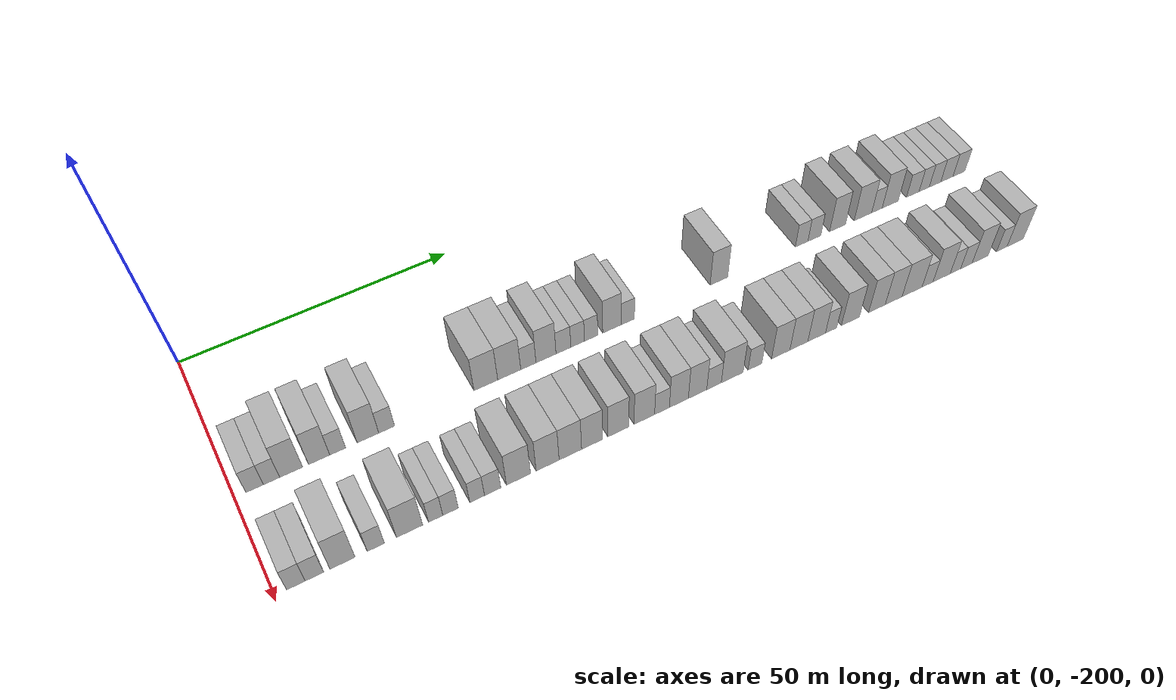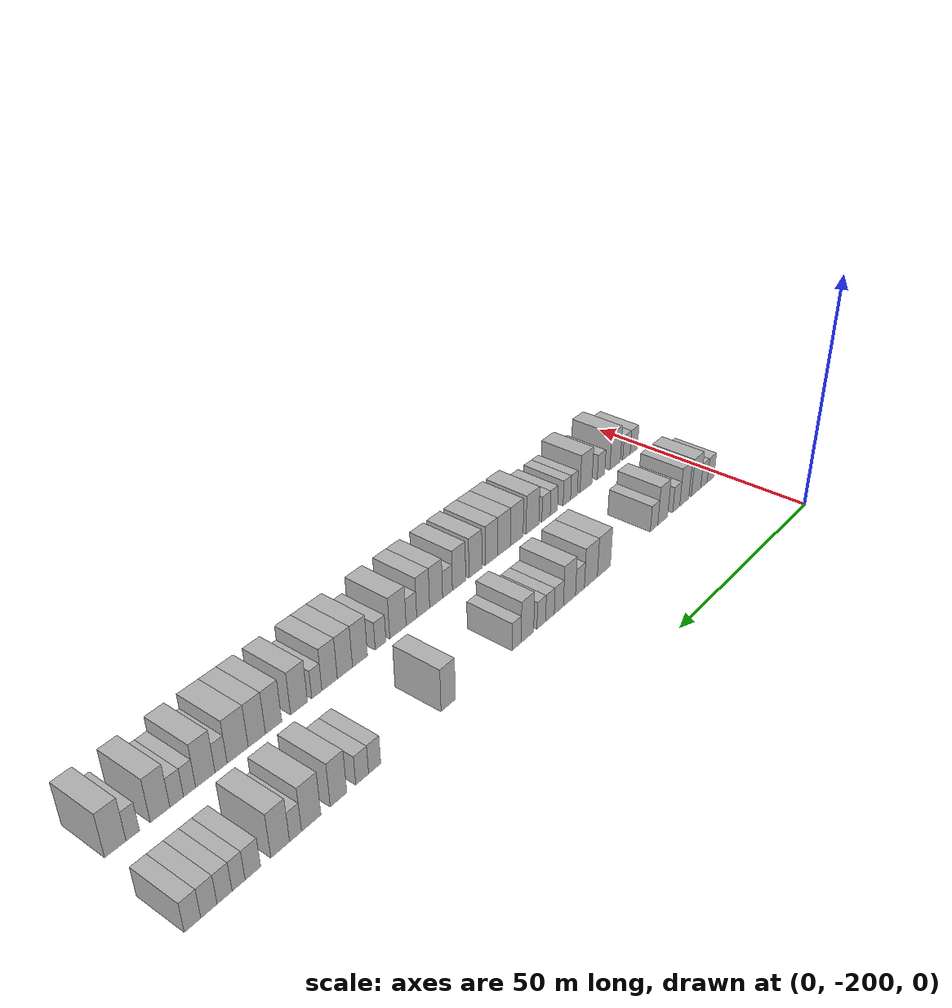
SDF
<sdf version="1.6">
 <world name="default">
  <model name="building_1">
   <static>1</static>
   <pose>25.0000 -196.5424 0 0.000000 0.000000 0.000000</pose>
   <link name="link">
    <pose>0 0 3.00 0 0 0</pose>
    <collision name="collision"><geometry><box><size>10.0000 2.9151 6.0000</size></box></geometry></collision>
    <visual name="visual">
     <cast_shadows>0</cast_shadows>
     <geometry><box><size>10.0000 2.9151 6.0000</size></box></geometry>
     <material>
      <script>
       <uri>model://HANNAS_wall/materials/scripts</uri>
       <uri>model://HANNAS_wall/materials/textures</uri>
       <name>vrc/HANNAS_wall</name>
      </script>
     </material>
    </visual>
   </link>
  </model>
  <model name="building_2">
   <static>1</static>
   <pose>25.0000 -193.7213 0 0.000000 0.000000 0.000000</pose>
   <link name="link">
    <pose>0 0 3.00 0 0 0</pose>
    <collision name="collision"><geometry><box><size>10.0000 2.7271 6.0000</size></box></geometry></collision>
    <visual name="visual">
     <cast_shadows>0</cast_shadows>
     <geometry><box><size>10.0000 2.7271 6.0000</size></box></geometry>
     <material>
      <script>
       <uri>model://HANNAS_wall/materials/scripts</uri>
       <uri>model://HANNAS_wall/materials/textures</uri>
       <name>vrc/HANNAS_wall</name>
      </script>
     </material>
    </visual>
   </link>
  </model>
  <model name="building_3">
   <static>1</static>
   <pose>25.0000 -190.4169 0 0.000000 0.000000 0.000000</pose>
   <link name="link">
    <pose>0 0 4.50 0 0 0</pose>
    <collision name="collision"><geometry><box><size>10.0000 3.8818 9.0000</size></box></geometry></collision>
    <visual name="visual">
     <cast_shadows>0</cast_shadows>
     <geometry><box><size>10.0000 3.8818 9.0000</size></box></geometry>
     <material>
      <script>
       <uri>model://HANNAS_wall/materials/scripts</uri>
       <uri>model://HANNAS_wall/materials/textures</uri>
       <name>vrc/HANNAS_wall</name>
      </script>
     </material>
    </visual>
   </link>
  </model>
  <model name="building_4">
   <static>1</static>
   <pose>25.0000 -185.6511 0 0.000000 0.000000 0.000000</pose>
   <link name="link">
    <pose>0 0 4.50 0 0 0</pose>
    <collision name="collision"><geometry><box><size>10.0000 3.6497 9.0000</size></box></geometry></collision>
    <visual name="visual">
     <cast_shadows>0</cast_shadows>
     <geometry><box><size>10.0000 3.6497 9.0000</size></box></geometry>
     <material>
      <script>
       <uri>model://HANNAS_wall/materials/scripts</uri>
       <uri>model://HANNAS_wall/materials/textures</uri>
       <name>vrc/HANNAS_wall</name>
      </script>
     </material>
    </visual>
   </link>
  </model>
  <model name="building_5">
   <static>1</static>
   <pose>25.0000 -182.4479 0 0.000000 0.000000 0.000000</pose>
   <link name="link">
    <pose>0 0 3.00 0 0 0</pose>
    <collision name="collision"><geometry><box><size>10.0000 2.7566 6.0000</size></box></geometry></collision>
    <visual name="visual">
     <cast_shadows>0</cast_shadows>
     <geometry><box><size>10.0000 2.7566 6.0000</size></box></geometry>
     <material>
      <script>
       <uri>model://HANNAS_wall/materials/scripts</uri>
       <uri>model://HANNAS_wall/materials/textures</uri>
       <name>vrc/HANNAS_wall</name>
      </script>
     </material>
    </visual>
   </link>
  </model>
  <model name="building_6">
   <static>1</static>
   <pose>25.0000 -177.1667 0 0.000000 0.000000 0.000000</pose>
   <link name="link">
    <pose>0 0 4.50 0 0 0</pose>
    <collision name="collision"><geometry><box><size>10.0000 3.8058 9.0000</size></box></geometry></collision>
    <visual name="visual">
     <cast_shadows>0</cast_shadows>
     <geometry><box><size>10.0000 3.8058 9.0000</size></box></geometry>
     <material>
      <script>
       <uri>model://HANNAS_wall/materials/scripts</uri>
       <uri>model://HANNAS_wall/materials/textures</uri>
       <name>vrc/HANNAS_wall</name>
      </script>
     </material>
    </visual>
   </link>
  </model>
  <model name="building_7">
   <static>1</static>
   <pose>25.0000 -173.8585 0 0.000000 0.000000 0.000000</pose>
   <link name="link">
    <pose>0 0 3.00 0 0 0</pose>
    <collision name="collision"><geometry><box><size>10.0000 2.8106 6.0000</size></box></geometry></collision>
    <visual name="visual">
     <cast_shadows>0</cast_shadows>
     <geometry><box><size>10.0000 2.8106 6.0000</size></box></geometry>
     <material>
      <script>
       <uri>model://HANNAS_wall/materials/scripts</uri>
       <uri>model://HANNAS_wall/materials/textures</uri>
       <name>vrc/HANNAS_wall</name>
      </script>
     </material>
    </visual>
   </link>
  </model>
  <model name="building_8">
   <static>1</static>
   <pose>25.0000 -155.7688 0 0.000000 0.000000 0.000000</pose>
   <link name="link">
    <pose>0 0 4.50 0 0 0</pose>
    <collision name="collision"><geometry><box><size>10.0000 4.4563 9.0000</size></box></geometry></collision>
    <visual name="visual">
     <cast_shadows>0</cast_shadows>
     <geometry><box><size>10.0000 4.4563 9.0000</size></box></geometry>
     <material>
      <script>
       <uri>model://HANNAS_wall/materials/scripts</uri>
       <uri>model://HANNAS_wall/materials/textures</uri>
       <name>vrc/HANNAS_wall</name>
      </script>
     </material>
    </visual>
   </link>
  </model>
  <model name="building_9">
   <static>1</static>
   <pose>25.0000 -151.3571 0 0.000000 0.000000 0.000000</pose>
   <link name="link">
    <pose>0 0 4.50 0 0 0</pose>
    <collision name="collision"><geometry><box><size>10.0000 4.3670 9.0000</size></box></geometry></collision>
    <visual name="visual">
     <cast_shadows>0</cast_shadows>
     <geometry><box><size>10.0000 4.3670 9.0000</size></box></geometry>
     <material>
      <script>
       <uri>model://HANNAS_wall/materials/scripts</uri>
       <uri>model://HANNAS_wall/materials/textures</uri>
       <name>vrc/HANNAS_wall</name>
      </script>
     </material>
    </visual>
   </link>
  </model>
  <model name="building_10">
   <static>1</static>
   <pose>25.0000 -147.7145 0 0.000000 0.000000 0.000000</pose>
   <link name="link">
    <pose>0 0 3.00 0 0 0</pose>
    <collision name="collision"><geometry><box><size>10.0000 2.9183 6.0000</size></box></geometry></collision>
    <visual name="visual">
     <cast_shadows>0</cast_shadows>
     <geometry><box><size>10.0000 2.9183 6.0000</size></box></geometry>
     <material>
      <script>
       <uri>model://HANNAS_wall/materials/scripts</uri>
       <uri>model://HANNAS_wall/materials/textures</uri>
       <name>vrc/HANNAS_wall</name>
      </script>
     </material>
    </visual>
   </link>
  </model>
  <model name="building_11">
   <static>1</static>
   <pose>25.0000 -144.3150 0 0.000000 0.000000 0.000000</pose>
   <link name="link">
    <pose>0 0 4.50 0 0 0</pose>
    <collision name="collision"><geometry><box><size>10.0000 3.8806 9.0000</size></box></geometry></collision>
    <visual name="visual">
     <cast_shadows>0</cast_shadows>
     <geometry><box><size>10.0000 3.8806 9.0000</size></box></geometry>
     <material>
      <script>
       <uri>model://HANNAS_wall/materials/scripts</uri>
       <uri>model://HANNAS_wall/materials/textures</uri>
       <name>vrc/HANNAS_wall</name>
      </script>
     </material>
    </visual>
   </link>
  </model>
  <model name="building_12">
   <static>1</static>
   <pose>25.0000 -140.9301 0 0.000000 0.000000 0.000000</pose>
   <link name="link">
    <pose>0 0 3.00 0 0 0</pose>
    <collision name="collision"><geometry><box><size>10.0000 2.8893 6.0000</size></box></geometry></collision>
    <visual name="visual">
     <cast_shadows>0</cast_shadows>
     <geometry><box><size>10.0000 2.8893 6.0000</size></box></geometry>
     <material>
      <script>
       <uri>model://HANNAS_wall/materials/scripts</uri>
       <uri>model://HANNAS_wall/materials/textures</uri>
       <name>vrc/HANNAS_wall</name>
      </script>
     </material>
    </visual>
   </link>
  </model>
  <model name="building_13">
   <static>1</static>
   <pose>25.0000 -138.1441 0 0.000000 0.000000 0.000000</pose>
   <link name="link">
    <pose>0 0 3.00 0 0 0</pose>
    <collision name="collision"><geometry><box><size>10.0000 2.6826 6.0000</size></box></geometry></collision>
    <visual name="visual">
     <cast_shadows>0</cast_shadows>
     <geometry><box><size>10.0000 2.6826 6.0000</size></box></geometry>
     <material>
      <script>
       <uri>model://HANNAS_wall/materials/scripts</uri>
       <uri>model://HANNAS_wall/materials/textures</uri>
       <name>vrc/HANNAS_wall</name>
      </script>
     </material>
    </visual>
   </link>
  </model>
  <model name="building_14">
   <static>1</static>
   <pose>25.0000 -135.4842 0 0.000000 0.000000 0.000000</pose>
   <link name="link">
    <pose>0 0 3.00 0 0 0</pose>
    <collision name="collision"><geometry><box><size>10.0000 2.6374 6.0000</size></box></geometry></collision>
    <visual name="visual">
     <cast_shadows>0</cast_shadows>
     <geometry><box><size>10.0000 2.6374 6.0000</size></box></geometry>
     <material>
      <script>
       <uri>model://HANNAS_wall/materials/scripts</uri>
       <uri>model://HANNAS_wall/materials/textures</uri>
       <name>vrc/HANNAS_wall</name>
      </script>
     </material>
    </visual>
   </link>
  </model>
  <model name="building_15">
   <static>1</static>
   <pose>25.0000 -131.2975 0 0.000000 0.000000 0.000000</pose>
   <link name="link">
    <pose>0 0 4.50 0 0 0</pose>
    <collision name="collision"><geometry><box><size>10.0000 3.7358 9.0000</size></box></geometry></collision>
    <visual name="visual">
     <cast_shadows>0</cast_shadows>
     <geometry><box><size>10.0000 3.7358 9.0000</size></box></geometry>
     <material>
      <script>
       <uri>model://HANNAS_wall/materials/scripts</uri>
       <uri>model://HANNAS_wall/materials/textures</uri>
       <name>vrc/HANNAS_wall</name>
      </script>
     </material>
    </visual>
   </link>
  </model>
  <model name="building_16">
   <static>1</static>
   <pose>25.0000 -128.1174 0 0.000000 0.000000 0.000000</pose>
   <link name="link">
    <pose>0 0 3.00 0 0 0</pose>
    <collision name="collision"><geometry><box><size>10.0000 2.6244 6.0000</size></box></geometry></collision>
    <visual name="visual">
     <cast_shadows>0</cast_shadows>
     <geometry><box><size>10.0000 2.6244 6.0000</size></box></geometry>
     <material>
      <script>
       <uri>model://HANNAS_wall/materials/scripts</uri>
       <uri>model://HANNAS_wall/materials/textures</uri>
       <name>vrc/HANNAS_wall</name>
      </script>
     </material>
    </visual>
   </link>
  </model>
  <model name="building_17">
   <static>1</static>
   <pose>25.0000 -109.2141 0 0.000000 0.000000 0.000000</pose>
   <link name="link">
    <pose>0 0 4.50 0 0 0</pose>
    <collision name="collision"><geometry><box><size>10.0000 3.7274 9.0000</size></box></geometry></collision>
    <visual name="visual">
     <cast_shadows>0</cast_shadows>
     <geometry><box><size>10.0000 3.7274 9.0000</size></box></geometry>
     <material>
      <script>
       <uri>model://HANNAS_wall/materials/scripts</uri>
       <uri>model://HANNAS_wall/materials/textures</uri>
       <name>vrc/HANNAS_wall</name>
      </script>
     </material>
    </visual>
   </link>
  </model>
  <model name="building_18">
   <static>1</static>
   <pose>25.0000 -91.1532 0 0.000000 0.000000 0.000000</pose>
   <link name="link">
    <pose>0 0 3.00 0 0 0</pose>
    <collision name="collision"><geometry><box><size>10.0000 2.7981 6.0000</size></box></geometry></collision>
    <visual name="visual">
     <cast_shadows>0</cast_shadows>
     <geometry><box><size>10.0000 2.7981 6.0000</size></box></geometry>
     <material>
      <script>
       <uri>model://HANNAS_wall/materials/scripts</uri>
       <uri>model://HANNAS_wall/materials/textures</uri>
       <name>vrc/HANNAS_wall</name>
      </script>
     </material>
    </visual>
   </link>
  </model>
  <model name="building_19">
   <static>1</static>
   <pose>25.0000 -88.2981 0 0.000000 0.000000 0.000000</pose>
   <link name="link">
    <pose>0 0 3.00 0 0 0</pose>
    <collision name="collision"><geometry><box><size>10.0000 2.9122 6.0000</size></box></geometry></collision>
    <visual name="visual">
     <cast_shadows>0</cast_shadows>
     <geometry><box><size>10.0000 2.9122 6.0000</size></box></geometry>
     <material>
      <script>
       <uri>model://HANNAS_wall/materials/scripts</uri>
       <uri>model://HANNAS_wall/materials/textures</uri>
       <name>vrc/HANNAS_wall</name>
      </script>
     </material>
    </visual>
   </link>
  </model>
  <model name="building_20">
   <static>1</static>
   <pose>25.0000 -83.0291 0 0.000000 0.000000 0.000000</pose>
   <link name="link">
    <pose>0 0 4.50 0 0 0</pose>
    <collision name="collision"><geometry><box><size>10.0000 3.6257 9.0000</size></box></geometry></collision>
    <visual name="visual">
     <cast_shadows>0</cast_shadows>
     <geometry><box><size>10.0000 3.6257 9.0000</size></box></geometry>
     <material>
      <script>
       <uri>model://HANNAS_wall/materials/scripts</uri>
       <uri>model://HANNAS_wall/materials/textures</uri>
       <name>vrc/HANNAS_wall</name>
      </script>
     </material>
    </visual>
   </link>
  </model>
  <model name="building_21">
   <static>1</static>
   <pose>25.0000 -77.1850 0 0.000000 0.000000 0.000000</pose>
   <link name="link">
    <pose>0 0 4.50 0 0 0</pose>
    <collision name="collision"><geometry><box><size>10.0000 4.0627 9.0000</size></box></geometry></collision>
    <visual name="visual">
     <cast_shadows>0</cast_shadows>
     <geometry><box><size>10.0000 4.0627 9.0000</size></box></geometry>
     <material>
      <script>
       <uri>model://HANNAS_wall/materials/scripts</uri>
       <uri>model://HANNAS_wall/materials/textures</uri>
       <name>vrc/HANNAS_wall</name>
      </script>
     </material>
    </visual>
   </link>
  </model>
  <model name="building_22">
   <static>1</static>
   <pose>25.0000 -73.9256 0 0.000000 0.000000 0.000000</pose>
   <link name="link">
    <pose>0 0 3.00 0 0 0</pose>
    <collision name="collision"><geometry><box><size>10.0000 2.4560 6.0000</size></box></geometry></collision>
    <visual name="visual">
     <cast_shadows>0</cast_shadows>
     <geometry><box><size>10.0000 2.4560 6.0000</size></box></geometry>
     <material>
      <script>
       <uri>model://HANNAS_wall/materials/scripts</uri>
       <uri>model://HANNAS_wall/materials/textures</uri>
       <name>vrc/HANNAS_wall</name>
      </script>
     </material>
    </visual>
   </link>
  </model>
  <model name="building_23">
   <static>1</static>
   <pose>25.0000 -70.8167 0 0.000000 0.000000 0.000000</pose>
   <link name="link">
    <pose>0 0 4.50 0 0 0</pose>
    <collision name="collision"><geometry><box><size>10.0000 3.7619 9.0000</size></box></geometry></collision>
    <visual name="visual">
     <cast_shadows>0</cast_shadows>
     <geometry><box><size>10.0000 3.7619 9.0000</size></box></geometry>
     <material>
      <script>
       <uri>model://HANNAS_wall/materials/scripts</uri>
       <uri>model://HANNAS_wall/materials/textures</uri>
       <name>vrc/HANNAS_wall</name>
      </script>
     </material>
    </visual>
   </link>
  </model>
  <model name="building_24">
   <static>1</static>
   <pose>25.0000 -65.4381 0 0.000000 0.000000 0.000000</pose>
   <link name="link">
    <pose>0 0 3.00 0 0 0</pose>
    <collision name="collision"><geometry><box><size>10.0000 2.9952 6.0000</size></box></geometry></collision>
    <visual name="visual">
     <cast_shadows>0</cast_shadows>
     <geometry><box><size>10.0000 2.9952 6.0000</size></box></geometry>
     <material>
      <script>
       <uri>model://HANNAS_wall/materials/scripts</uri>
       <uri>model://HANNAS_wall/materials/textures</uri>
       <name>vrc/HANNAS_wall</name>
      </script>
     </material>
    </visual>
   </link>
  </model>
  <model name="building_25">
   <static>1</static>
   <pose>25.0000 -62.7104 0 0.000000 0.000000 0.000000</pose>
   <link name="link">
    <pose>0 0 3.00 0 0 0</pose>
    <collision name="collision"><geometry><box><size>10.0000 2.4601 6.0000</size></box></geometry></collision>
    <visual name="visual">
     <cast_shadows>0</cast_shadows>
     <geometry><box><size>10.0000 2.4601 6.0000</size></box></geometry>
     <material>
      <script>
       <uri>model://HANNAS_wall/materials/scripts</uri>
       <uri>model://HANNAS_wall/materials/textures</uri>
       <name>vrc/HANNAS_wall</name>
      </script>
     </material>
    </visual>
   </link>
  </model>
  <model name="building_26">
   <static>1</static>
   <pose>25.0000 -60.0900 0 0.000000 0.000000 0.000000</pose>
   <link name="link">
    <pose>0 0 3.00 0 0 0</pose>
    <collision name="collision"><geometry><box><size>10.0000 2.7807 6.0000</size></box></geometry></collision>
    <visual name="visual">
     <cast_shadows>0</cast_shadows>
     <geometry><box><size>10.0000 2.7807 6.0000</size></box></geometry>
     <material>
      <script>
       <uri>model://HANNAS_wall/materials/scripts</uri>
       <uri>model://HANNAS_wall/materials/textures</uri>
       <name>vrc/HANNAS_wall</name>
      </script>
     </material>
    </visual>
   </link>
  </model>
  <model name="building_27">
   <static>1</static>
   <pose>25.0000 -57.2207 0 0.000000 0.000000 0.000000</pose>
   <link name="link">
    <pose>0 0 3.00 0 0 0</pose>
    <collision name="collision"><geometry><box><size>10.0000 2.9579 6.0000</size></box></geometry></collision>
    <visual name="visual">
     <cast_shadows>0</cast_shadows>
     <geometry><box><size>10.0000 2.9579 6.0000</size></box></geometry>
     <material>
      <script>
       <uri>model://HANNAS_wall/materials/scripts</uri>
       <uri>model://HANNAS_wall/materials/textures</uri>
       <name>vrc/HANNAS_wall</name>
      </script>
     </material>
    </visual>
   </link>
  </model>
  <model name="building_28">
   <static>1</static>
   <pose>25.0000 -54.2702 0 0.000000 0.000000 0.000000</pose>
   <link name="link">
    <pose>0 0 3.00 0 0 0</pose>
    <collision name="collision"><geometry><box><size>10.0000 2.9431 6.0000</size></box></geometry></collision>
    <visual name="visual">
     <cast_shadows>0</cast_shadows>
     <geometry><box><size>10.0000 2.9431 6.0000</size></box></geometry>
     <material>
      <script>
       <uri>model://HANNAS_wall/materials/scripts</uri>
       <uri>model://HANNAS_wall/materials/textures</uri>
       <name>vrc/HANNAS_wall</name>
      </script>
     </material>
    </visual>
   </link>
  </model>
  <model name="building_95">
   <static>1</static>
   <pose>44.0000 -196.5131 0 0.000000 0.000000 0.000000</pose>
   <link name="link">
    <pose>0 0 3.00 0 0 0</pose>
    <collision name="collision"><geometry><box><size>10.0000 2.9738 6.0000</size></box></geometry></collision>
    <visual name="visual">
     <cast_shadows>0</cast_shadows>
     <geometry><box><size>10.0000 2.9738 6.0000</size></box></geometry>
     <material>
      <script>
       <uri>model://HANNAS_wall/materials/scripts</uri>
       <uri>model://HANNAS_wall/materials/textures</uri>
       <name>vrc/HANNAS_wall</name>
      </script>
     </material>
    </visual>
   </link>
  </model>
  <model name="building_96">
   <static>1</static>
   <pose>44.0000 -193.5452 0 0.000000 0.000000 0.000000</pose>
   <link name="link">
    <pose>0 0 3.00 0 0 0</pose>
    <collision name="collision"><geometry><box><size>10.0000 2.9620 6.0000</size></box></geometry></collision>
    <visual name="visual">
     <cast_shadows>0</cast_shadows>
     <geometry><box><size>10.0000 2.9620 6.0000</size></box></geometry>
     <material>
      <script>
       <uri>model://HANNAS_wall/materials/scripts</uri>
       <uri>model://HANNAS_wall/materials/textures</uri>
       <name>vrc/HANNAS_wall</name>
      </script>
     </material>
    </visual>
   </link>
  </model>
  <model name="building_97">
   <static>1</static>
   <pose>44.0000 -189.0156 0 0.000000 0.000000 0.000000</pose>
   <link name="link">
    <pose>0 0 4.50 0 0 0</pose>
    <collision name="collision"><geometry><box><size>10.0000 4.0971 9.0000</size></box></geometry></collision>
    <visual name="visual">
     <cast_shadows>0</cast_shadows>
     <geometry><box><size>10.0000 4.0971 9.0000</size></box></geometry>
     <material>
      <script>
       <uri>model://HANNAS_wall/materials/scripts</uri>
       <uri>model://HANNAS_wall/materials/textures</uri>
       <name>vrc/HANNAS_wall</name>
      </script>
     </material>
    </visual>
   </link>
  </model>
  <model name="building_98">
   <static>1</static>
   <pose>44.0000 -183.5413 0 0.000000 0.000000 0.000000</pose>
   <link name="link">
    <pose>0 0 3.00 0 0 0</pose>
    <collision name="collision"><geometry><box><size>10.0000 2.8515 6.0000</size></box></geometry></collision>
    <visual name="visual">
     <cast_shadows>0</cast_shadows>
     <geometry><box><size>10.0000 2.8515 6.0000</size></box></geometry>
     <material>
      <script>
       <uri>model://HANNAS_wall/materials/scripts</uri>
       <uri>model://HANNAS_wall/materials/textures</uri>
       <name>vrc/HANNAS_wall</name>
      </script>
     </material>
    </visual>
   </link>
  </model>
  <model name="building_99">
   <static>1</static>
   <pose>44.0000 -177.8961 0 0.000000 0.000000 0.000000</pose>
   <link name="link">
    <pose>0 0 4.50 0 0 0</pose>
    <collision name="collision"><geometry><box><size>10.0000 4.4389 9.0000</size></box></geometry></collision>
    <visual name="visual">
     <cast_shadows>0</cast_shadows>
     <geometry><box><size>10.0000 4.4389 9.0000</size></box></geometry>
     <material>
      <script>
       <uri>model://HANNAS_wall/materials/scripts</uri>
       <uri>model://HANNAS_wall/materials/textures</uri>
       <name>vrc/HANNAS_wall</name>
      </script>
     </material>
    </visual>
   </link>
  </model>
  <model name="building_100">
   <static>1</static>
   <pose>44.0000 -173.4527 0 0.000000 0.000000 0.000000</pose>
   <link name="link">
    <pose>0 0 3.00 0 0 0</pose>
    <collision name="collision"><geometry><box><size>10.0000 2.4479 6.0000</size></box></geometry></collision>
    <visual name="visual">
     <cast_shadows>0</cast_shadows>
     <geometry><box><size>10.0000 2.4479 6.0000</size></box></geometry>
     <material>
      <script>
       <uri>model://HANNAS_wall/materials/scripts</uri>
       <uri>model://HANNAS_wall/materials/textures</uri>
       <name>vrc/HANNAS_wall</name>
      </script>
     </material>
    </visual>
   </link>
  </model>
  <model name="building_101">
   <static>1</static>
   <pose>44.0000 -170.8989 0 0.000000 0.000000 0.000000</pose>
   <link name="link">
    <pose>0 0 3.00 0 0 0</pose>
    <collision name="collision"><geometry><box><size>10.0000 2.6598 6.0000</size></box></geometry></collision>
    <visual name="visual">
     <cast_shadows>0</cast_shadows>
     <geometry><box><size>10.0000 2.6598 6.0000</size></box></geometry>
     <material>
      <script>
       <uri>model://HANNAS_wall/materials/scripts</uri>
       <uri>model://HANNAS_wall/materials/textures</uri>
       <name>vrc/HANNAS_wall</name>
      </script>
     </material>
    </visual>
   </link>
  </model>
  <model name="building_102">
   <static>1</static>
   <pose>44.0000 -166.2875 0 0.000000 0.000000 0.000000</pose>
   <link name="link">
    <pose>0 0 3.00 0 0 0</pose>
    <collision name="collision"><geometry><box><size>10.0000 2.5629 6.0000</size></box></geometry></collision>
    <visual name="visual">
     <cast_shadows>0</cast_shadows>
     <geometry><box><size>10.0000 2.5629 6.0000</size></box></geometry>
     <material>
      <script>
       <uri>model://HANNAS_wall/materials/scripts</uri>
       <uri>model://HANNAS_wall/materials/textures</uri>
       <name>vrc/HANNAS_wall</name>
      </script>
     </material>
    </visual>
   </link>
  </model>
  <model name="building_103">
   <static>1</static>
   <pose>44.0000 -163.5679 0 0.000000 0.000000 0.000000</pose>
   <link name="link">
    <pose>0 0 3.00 0 0 0</pose>
    <collision name="collision"><geometry><box><size>10.0000 2.8762 6.0000</size></box></geometry></collision>
    <visual name="visual">
     <cast_shadows>0</cast_shadows>
     <geometry><box><size>10.0000 2.8762 6.0000</size></box></geometry>
     <material>
      <script>
       <uri>model://HANNAS_wall/materials/scripts</uri>
       <uri>model://HANNAS_wall/materials/textures</uri>
       <name>vrc/HANNAS_wall</name>
      </script>
     </material>
    </visual>
   </link>
  </model>
  <model name="building_104">
   <static>1</static>
   <pose>44.0000 -158.9699 0 0.000000 0.000000 0.000000</pose>
   <link name="link">
    <pose>0 0 4.50 0 0 0</pose>
    <collision name="collision"><geometry><box><size>10.0000 4.3199 9.0000</size></box></geometry></collision>
    <visual name="visual">
     <cast_shadows>0</cast_shadows>
     <geometry><box><size>10.0000 4.3199 9.0000</size></box></geometry>
     <material>
      <script>
       <uri>model://HANNAS_wall/materials/scripts</uri>
       <uri>model://HANNAS_wall/materials/textures</uri>
       <name>vrc/HANNAS_wall</name>
      </script>
     </material>
    </visual>
   </link>
  </model>
  <model name="building_105">
   <static>1</static>
   <pose>44.0000 -153.7224 0 0.000000 0.000000 0.000000</pose>
   <link name="link">
    <pose>0 0 4.50 0 0 0</pose>
    <collision name="collision"><geometry><box><size>10.0000 4.1751 9.0000</size></box></geometry></collision>
    <visual name="visual">
     <cast_shadows>0</cast_shadows>
     <geometry><box><size>10.0000 4.1751 9.0000</size></box></geometry>
     <material>
      <script>
       <uri>model://HANNAS_wall/materials/scripts</uri>
       <uri>model://HANNAS_wall/materials/textures</uri>
       <name>vrc/HANNAS_wall</name>
      </script>
     </material>
    </visual>
   </link>
  </model>
  <model name="building_106">
   <static>1</static>
   <pose>44.0000 -149.5695 0 0.000000 0.000000 0.000000</pose>
   <link name="link">
    <pose>0 0 4.50 0 0 0</pose>
    <collision name="collision"><geometry><box><size>10.0000 4.1305 9.0000</size></box></geometry></collision>
    <visual name="visual">
     <cast_shadows>0</cast_shadows>
     <geometry><box><size>10.0000 4.1305 9.0000</size></box></geometry>
     <material>
      <script>
       <uri>model://HANNAS_wall/materials/scripts</uri>
       <uri>model://HANNAS_wall/materials/textures</uri>
       <name>vrc/HANNAS_wall</name>
      </script>
     </material>
    </visual>
   </link>
  </model>
  <model name="building_107">
   <static>1</static>
   <pose>44.0000 -145.5526 0 0.000000 0.000000 0.000000</pose>
   <link name="link">
    <pose>0 0 4.50 0 0 0</pose>
    <collision name="collision"><geometry><box><size>10.0000 3.9034 9.0000</size></box></geometry></collision>
    <visual name="visual">
     <cast_shadows>0</cast_shadows>
     <geometry><box><size>10.0000 3.9034 9.0000</size></box></geometry>
     <material>
      <script>
       <uri>model://HANNAS_wall/materials/scripts</uri>
       <uri>model://HANNAS_wall/materials/textures</uri>
       <name>vrc/HANNAS_wall</name>
      </script>
     </material>
    </visual>
   </link>
  </model>
  <model name="building_108">
   <static>1</static>
   <pose>44.0000 -140.6276 0 0.000000 0.000000 0.000000</pose>
   <link name="link">
    <pose>0 0 4.50 0 0 0</pose>
    <collision name="collision"><geometry><box><size>10.0000 3.9466 9.0000</size></box></geometry></collision>
    <visual name="visual">
     <cast_shadows>0</cast_shadows>
     <geometry><box><size>10.0000 3.9466 9.0000</size></box></geometry>
     <material>
      <script>
       <uri>model://HANNAS_wall/materials/scripts</uri>
       <uri>model://HANNAS_wall/materials/textures</uri>
       <name>vrc/HANNAS_wall</name>
      </script>
     </material>
    </visual>
   </link>
  </model>
  <model name="building_109">
   <static>1</static>
   <pose>44.0000 -135.6842 0 0.000000 0.000000 0.000000</pose>
   <link name="link">
    <pose>0 0 4.50 0 0 0</pose>
    <collision name="collision"><geometry><box><size>10.0000 3.9401 9.0000</size></box></geometry></collision>
    <visual name="visual">
     <cast_shadows>0</cast_shadows>
     <geometry><box><size>10.0000 3.9401 9.0000</size></box></geometry>
     <material>
      <script>
       <uri>model://HANNAS_wall/materials/scripts</uri>
       <uri>model://HANNAS_wall/materials/textures</uri>
       <name>vrc/HANNAS_wall</name>
      </script>
     </material>
    </visual>
   </link>
  </model>
  <model name="building_110">
   <static>1</static>
   <pose>44.0000 -132.2876 0 0.000000 0.000000 0.000000</pose>
   <link name="link">
    <pose>0 0 3.00 0 0 0</pose>
    <collision name="collision"><geometry><box><size>10.0000 2.8532 6.0000</size></box></geometry></collision>
    <visual name="visual">
     <cast_shadows>0</cast_shadows>
     <geometry><box><size>10.0000 2.8532 6.0000</size></box></geometry>
     <material>
      <script>
       <uri>model://HANNAS_wall/materials/scripts</uri>
       <uri>model://HANNAS_wall/materials/textures</uri>
       <name>vrc/HANNAS_wall</name>
      </script>
     </material>
    </visual>
   </link>
  </model>
  <model name="building_111">
   <static>1</static>
   <pose>44.0000 -129.0099 0 0.000000 0.000000 0.000000</pose>
   <link name="link">
    <pose>0 0 4.50 0 0 0</pose>
    <collision name="collision"><geometry><box><size>10.0000 3.7021 9.0000</size></box></geometry></collision>
    <visual name="visual">
     <cast_shadows>0</cast_shadows>
     <geometry><box><size>10.0000 3.7021 9.0000</size></box></geometry>
     <material>
      <script>
       <uri>model://HANNAS_wall/materials/scripts</uri>
       <uri>model://HANNAS_wall/materials/textures</uri>
       <name>vrc/HANNAS_wall</name>
      </script>
     </material>
    </visual>
   </link>
  </model>
  <model name="building_112">
   <static>1</static>
   <pose>44.0000 -125.3409 0 0.000000 0.000000 0.000000</pose>
   <link name="link">
    <pose>0 0 4.50 0 0 0</pose>
    <collision name="collision"><geometry><box><size>10.0000 3.6359 9.0000</size></box></geometry></collision>
    <visual name="visual">
     <cast_shadows>0</cast_shadows>
     <geometry><box><size>10.0000 3.6359 9.0000</size></box></geometry>
     <material>
      <script>
       <uri>model://HANNAS_wall/materials/scripts</uri>
       <uri>model://HANNAS_wall/materials/textures</uri>
       <name>vrc/HANNAS_wall</name>
      </script>
     </material>
    </visual>
   </link>
  </model>
  <model name="building_113">
   <static>1</static>
   <pose>44.0000 -122.0702 0 0.000000 0.000000 0.000000</pose>
   <link name="link">
    <pose>0 0 3.00 0 0 0</pose>
    <collision name="collision"><geometry><box><size>10.0000 2.9055 6.0000</size></box></geometry></collision>
    <visual name="visual">
     <cast_shadows>0</cast_shadows>
     <geometry><box><size>10.0000 2.9055 6.0000</size></box></geometry>
     <material>
      <script>
       <uri>model://HANNAS_wall/materials/scripts</uri>
       <uri>model://HANNAS_wall/materials/textures</uri>
       <name>vrc/HANNAS_wall</name>
      </script>
     </material>
    </visual>
   </link>
  </model>
  <model name="building_114">
   <static>1</static>
   <pose>44.0000 -118.4156 0 0.000000 0.000000 0.000000</pose>
   <link name="link">
    <pose>0 0 4.50 0 0 0</pose>
    <collision name="collision"><geometry><box><size>10.0000 4.4038 9.0000</size></box></geometry></collision>
    <visual name="visual">
     <cast_shadows>0</cast_shadows>
     <geometry><box><size>10.0000 4.4038 9.0000</size></box></geometry>
     <material>
      <script>
       <uri>model://HANNAS_wall/materials/scripts</uri>
       <uri>model://HANNAS_wall/materials/textures</uri>
       <name>vrc/HANNAS_wall</name>
      </script>
     </material>
    </visual>
   </link>
  </model>
  <model name="building_115">
   <static>1</static>
   <pose>44.0000 -113.8038 0 0.000000 0.000000 0.000000</pose>
   <link name="link">
    <pose>0 0 3.00 0 0 0</pose>
    <collision name="collision"><geometry><box><size>10.0000 2.8198 6.0000</size></box></geometry></collision>
    <visual name="visual">
     <cast_shadows>0</cast_shadows>
     <geometry><box><size>10.0000 2.8198 6.0000</size></box></geometry>
     <material>
      <script>
       <uri>model://HANNAS_wall/materials/scripts</uri>
       <uri>model://HANNAS_wall/materials/textures</uri>
       <name>vrc/HANNAS_wall</name>
      </script>
     </material>
    </visual>
   </link>
  </model>
  <model name="building_116">
   <static>1</static>
   <pose>44.0000 -108.5006 0 0.000000 0.000000 0.000000</pose>
   <link name="link">
    <pose>0 0 4.50 0 0 0</pose>
    <collision name="collision"><geometry><box><size>10.0000 3.7865 9.0000</size></box></geometry></collision>
    <visual name="visual">
     <cast_shadows>0</cast_shadows>
     <geometry><box><size>10.0000 3.7865 9.0000</size></box></geometry>
     <material>
      <script>
       <uri>model://HANNAS_wall/materials/scripts</uri>
       <uri>model://HANNAS_wall/materials/textures</uri>
       <name>vrc/HANNAS_wall</name>
      </script>
     </material>
    </visual>
   </link>
  </model>
  <model name="building_117">
   <static>1</static>
   <pose>44.0000 -104.7269 0 0.000000 0.000000 0.000000</pose>
   <link name="link">
    <pose>0 0 4.50 0 0 0</pose>
    <collision name="collision"><geometry><box><size>10.0000 3.7609 9.0000</size></box></geometry></collision>
    <visual name="visual">
     <cast_shadows>0</cast_shadows>
     <geometry><box><size>10.0000 3.7609 9.0000</size></box></geometry>
     <material>
      <script>
       <uri>model://HANNAS_wall/materials/scripts</uri>
       <uri>model://HANNAS_wall/materials/textures</uri>
       <name>vrc/HANNAS_wall</name>
      </script>
     </material>
    </visual>
   </link>
  </model>
  <model name="building_118">
   <static>1</static>
   <pose>44.0000 -100.9805 0 0.000000 0.000000 0.000000</pose>
   <link name="link">
    <pose>0 0 4.50 0 0 0</pose>
    <collision name="collision"><geometry><box><size>10.0000 3.7319 9.0000</size></box></geometry></collision>
    <visual name="visual">
     <cast_shadows>0</cast_shadows>
     <geometry><box><size>10.0000 3.7319 9.0000</size></box></geometry>
     <material>
      <script>
       <uri>model://HANNAS_wall/materials/scripts</uri>
       <uri>model://HANNAS_wall/materials/textures</uri>
       <name>vrc/HANNAS_wall</name>
      </script>
     </material>
    </visual>
   </link>
  </model>
  <model name="building_119">
   <static>1</static>
   <pose>44.0000 -97.9132 0 0.000000 0.000000 0.000000</pose>
   <link name="link">
    <pose>0 0 3.00 0 0 0</pose>
    <collision name="collision"><geometry><box><size>10.0000 2.4027 6.0000</size></box></geometry></collision>
    <visual name="visual">
     <cast_shadows>0</cast_shadows>
     <geometry><box><size>10.0000 2.4027 6.0000</size></box></geometry>
     <material>
      <script>
       <uri>model://HANNAS_wall/materials/scripts</uri>
       <uri>model://HANNAS_wall/materials/textures</uri>
       <name>vrc/HANNAS_wall</name>
      </script>
     </material>
    </visual>
   </link>
  </model>
  <model name="building_120">
   <static>1</static>
   <pose>44.0000 -93.7630 0 0.000000 0.000000 0.000000</pose>
   <link name="link">
    <pose>0 0 4.50 0 0 0</pose>
    <collision name="collision"><geometry><box><size>10.0000 3.8976 9.0000</size></box></geometry></collision>
    <visual name="visual">
     <cast_shadows>0</cast_shadows>
     <geometry><box><size>10.0000 3.8976 9.0000</size></box></geometry>
     <material>
      <script>
       <uri>model://HANNAS_wall/materials/scripts</uri>
       <uri>model://HANNAS_wall/materials/textures</uri>
       <name>vrc/HANNAS_wall</name>
      </script>
     </material>
    </visual>
   </link>
  </model>
  <model name="building_121">
   <static>1</static>
   <pose>44.0000 -87.9884 0 0.000000 0.000000 0.000000</pose>
   <link name="link">
    <pose>0 0 4.50 0 0 0</pose>
    <collision name="collision"><geometry><box><size>10.0000 3.6517 9.0000</size></box></geometry></collision>
    <visual name="visual">
     <cast_shadows>0</cast_shadows>
     <geometry><box><size>10.0000 3.6517 9.0000</size></box></geometry>
     <material>
      <script>
       <uri>model://HANNAS_wall/materials/scripts</uri>
       <uri>model://HANNAS_wall/materials/textures</uri>
       <name>vrc/HANNAS_wall</name>
      </script>
     </material>
    </visual>
   </link>
  </model>
  <model name="building_122">
   <static>1</static>
   <pose>44.0000 -84.2966 0 0.000000 0.000000 0.000000</pose>
   <link name="link">
    <pose>0 0 4.50 0 0 0</pose>
    <collision name="collision"><geometry><box><size>10.0000 3.7318 9.0000</size></box></geometry></collision>
    <visual name="visual">
     <cast_shadows>0</cast_shadows>
     <geometry><box><size>10.0000 3.7318 9.0000</size></box></geometry>
     <material>
      <script>
       <uri>model://HANNAS_wall/materials/scripts</uri>
       <uri>model://HANNAS_wall/materials/textures</uri>
       <name>vrc/HANNAS_wall</name>
      </script>
     </material>
    </visual>
   </link>
  </model>
  <model name="building_123">
   <static>1</static>
   <pose>44.0000 -80.1971 0 0.000000 0.000000 0.000000</pose>
   <link name="link">
    <pose>0 0 4.50 0 0 0</pose>
    <collision name="collision"><geometry><box><size>10.0000 4.4672 9.0000</size></box></geometry></collision>
    <visual name="visual">
     <cast_shadows>0</cast_shadows>
     <geometry><box><size>10.0000 4.4672 9.0000</size></box></geometry>
     <material>
      <script>
       <uri>model://HANNAS_wall/materials/scripts</uri>
       <uri>model://HANNAS_wall/materials/textures</uri>
       <name>vrc/HANNAS_wall</name>
      </script>
     </material>
    </visual>
   </link>
  </model>
  <model name="building_124">
   <static>1</static>
   <pose>44.0000 -76.7151 0 0.000000 0.000000 0.000000</pose>
   <link name="link">
    <pose>0 0 3.00 0 0 0</pose>
    <collision name="collision"><geometry><box><size>10.0000 2.4968 6.0000</size></box></geometry></collision>
    <visual name="visual">
     <cast_shadows>0</cast_shadows>
     <geometry><box><size>10.0000 2.4968 6.0000</size></box></geometry>
     <material>
      <script>
       <uri>model://HANNAS_wall/materials/scripts</uri>
       <uri>model://HANNAS_wall/materials/textures</uri>
       <name>vrc/HANNAS_wall</name>
      </script>
     </material>
    </visual>
   </link>
  </model>
  <model name="building_125">
   <static>1</static>
   <pose>44.0000 -73.5106 0 0.000000 0.000000 0.000000</pose>
   <link name="link">
    <pose>0 0 4.50 0 0 0</pose>
    <collision name="collision"><geometry><box><size>10.0000 3.9122 9.0000</size></box></geometry></collision>
    <visual name="visual">
     <cast_shadows>0</cast_shadows>
     <geometry><box><size>10.0000 3.9122 9.0000</size></box></geometry>
     <material>
      <script>
       <uri>model://HANNAS_wall/materials/scripts</uri>
       <uri>model://HANNAS_wall/materials/textures</uri>
       <name>vrc/HANNAS_wall</name>
      </script>
     </material>
    </visual>
   </link>
  </model>
  <model name="building_126">
   <static>1</static>
   <pose>44.0000 -70.3510 0 0.000000 0.000000 0.000000</pose>
   <link name="link">
    <pose>0 0 3.00 0 0 0</pose>
    <collision name="collision"><geometry><box><size>10.0000 2.4070 6.0000</size></box></geometry></collision>
    <visual name="visual">
     <cast_shadows>0</cast_shadows>
     <geometry><box><size>10.0000 2.4070 6.0000</size></box></geometry>
     <material>
      <script>
       <uri>model://HANNAS_wall/materials/scripts</uri>
       <uri>model://HANNAS_wall/materials/textures</uri>
       <name>vrc/HANNAS_wall</name>
      </script>
     </material>
    </visual>
   </link>
  </model>
  <model name="building_127">
   <static>1</static>
   <pose>44.0000 -67.8232 0 0.000000 0.000000 0.000000</pose>
   <link name="link">
    <pose>0 0 3.00 0 0 0</pose>
    <collision name="collision"><geometry><box><size>10.0000 2.6487 6.0000</size></box></geometry></collision>
    <visual name="visual">
     <cast_shadows>0</cast_shadows>
     <geometry><box><size>10.0000 2.6487 6.0000</size></box></geometry>
     <material>
      <script>
       <uri>model://HANNAS_wall/materials/scripts</uri>
       <uri>model://HANNAS_wall/materials/textures</uri>
       <name>vrc/HANNAS_wall</name>
      </script>
     </material>
    </visual>
   </link>
  </model>
  <model name="building_128">
   <static>1</static>
   <pose>44.0000 -64.6267 0 0.000000 0.000000 0.000000</pose>
   <link name="link">
    <pose>0 0 4.50 0 0 0</pose>
    <collision name="collision"><geometry><box><size>10.0000 3.7442 9.0000</size></box></geometry></collision>
    <visual name="visual">
     <cast_shadows>0</cast_shadows>
     <geometry><box><size>10.0000 3.7442 9.0000</size></box></geometry>
     <material>
      <script>
       <uri>model://HANNAS_wall/materials/scripts</uri>
       <uri>model://HANNAS_wall/materials/textures</uri>
       <name>vrc/HANNAS_wall</name>
      </script>
     </material>
    </visual>
   </link>
  </model>
  <model name="building_129">
   <static>1</static>
   <pose>44.0000 -59.5214 0 0.000000 0.000000 0.000000</pose>
   <link name="link">
    <pose>0 0 3.00 0 0 0</pose>
    <collision name="collision"><geometry><box><size>10.0000 2.4665 6.0000</size></box></geometry></collision>
    <visual name="visual">
     <cast_shadows>0</cast_shadows>
     <geometry><box><size>10.0000 2.4665 6.0000</size></box></geometry>
     <material>
      <script>
       <uri>model://HANNAS_wall/materials/scripts</uri>
       <uri>model://HANNAS_wall/materials/textures</uri>
       <name>vrc/HANNAS_wall</name>
      </script>
     </material>
    </visual>
   </link>
  </model>
  <model name="building_130">
   <static>1</static>
   <pose>44.0000 -56.3561 0 0.000000 0.000000 0.000000</pose>
   <link name="link">
    <pose>0 0 4.50 0 0 0</pose>
    <collision name="collision"><geometry><box><size>10.0000 3.8641 9.0000</size></box></geometry></collision>
    <visual name="visual">
     <cast_shadows>0</cast_shadows>
     <geometry><box><size>10.0000 3.8641 9.0000</size></box></geometry>
     <material>
      <script>
       <uri>model://HANNAS_wall/materials/scripts</uri>
       <uri>model://HANNAS_wall/materials/textures</uri>
       <name>vrc/HANNAS_wall</name>
      </script>
     </material>
    </visual>
   </link>
  </model>
 </world>
</sdf>
